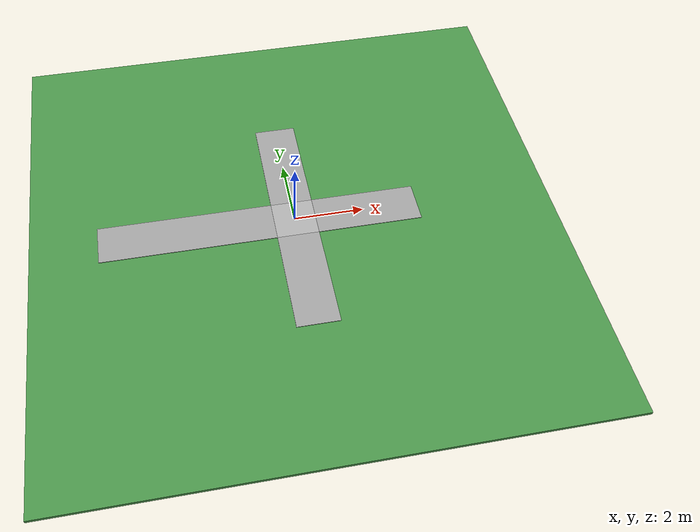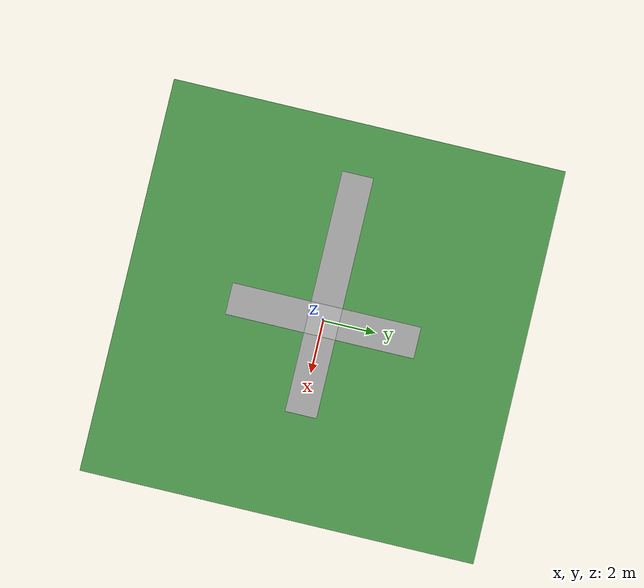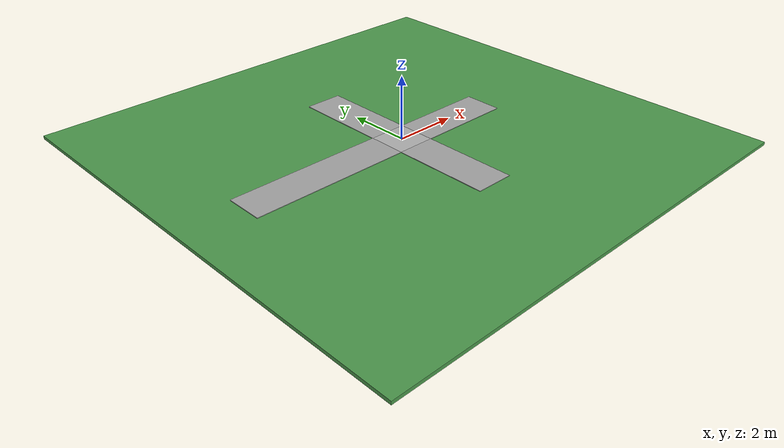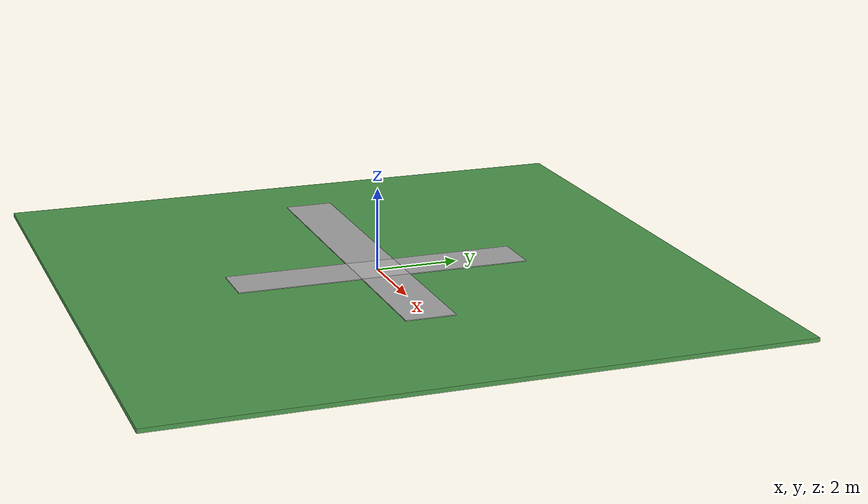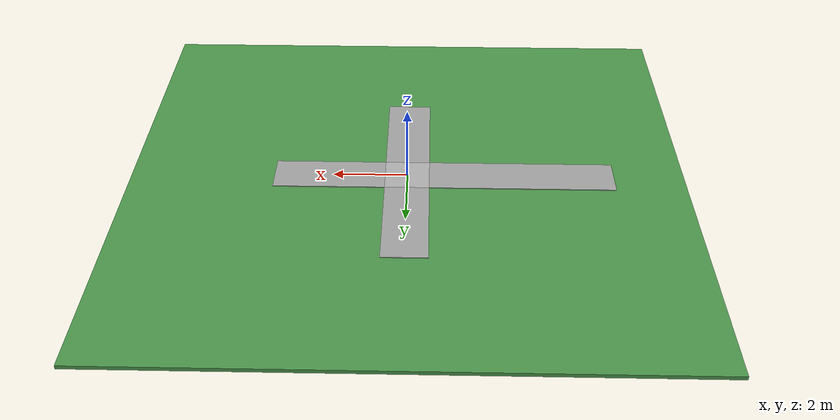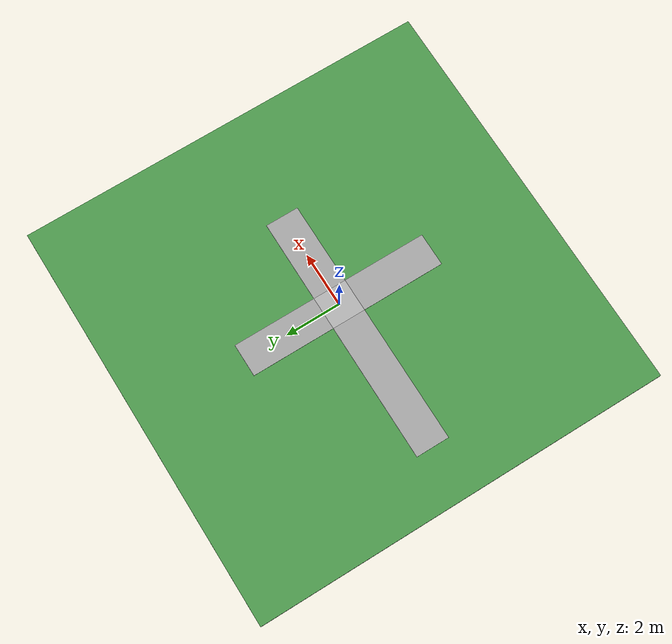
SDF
<?xml version="1.0" ?>
<sdf version="1.8">
  <world name="campus_sidewalk">

    <!-- 1. SIMULATION PHYSICS & SYSTEM PLUGINS     -->
    <physics name="1ms" type="ignored">
      <max_step_size>0.001</max_step_size>
      <real_time_factor>1.0</real_time_factor>
    </physics>

    <plugin filename="ignition-gazebo-physics-system" name="ignition::gazebo::systems::Physics"/>
    <plugin filename="ignition-gazebo-user-commands-system" name="ignition::gazebo::systems::UserCommands"/>
    <plugin filename="ignition-gazebo-scene-broadcaster-system" name="ignition::gazebo::systems::SceneBroadcaster"/>
    <plugin filename="ignition-gazebo-sensors-system" name="ignition::gazebo::systems::Sensors">
      <render_engine>ogre2</render_engine>
    </plugin>

    <!-- 2. LIGHTING & SUN                          -->
    <light type="directional" name="sun">
      <cast_shadows>true</cast_shadows>
      <pose>0 0 10 0 0 0</pose>
      <diffuse>0.8 0.8 0.8 1</diffuse>
      <specular>0.2 0.2 0.2 1</specular>
      <attenuation>
        <range>1000</range>
        <constant>0.9</constant>
        <linear>0.01</linear>
        <quadratic>0.001</quadratic>
      </attenuation>
      <direction>-0.5 0.1 -0.9</direction>
    </light>

    <!-- 3. THE GRASS BASE (Label 2)                -->
    <model name="grass_plane">
      <static>true</static>
      <link name="link">
        <pose>0 0 -0.05 0 0 0</pose> <!-- Top surface sits at Z = 0.0 -->
        <collision name="collision">
          <geometry><box><size>15 15 0.1</size></box></geometry>
        </collision>
        <visual name="visual">
          <geometry><box><size>15 15 0.1</size></box></geometry>
          <material>
            <ambient>0.3 0.6 0.3 1</ambient>
            <diffuse>0.3 0.6 0.3 1</diffuse>
          </material>
          <plugin filename="ignition-gazebo-label-system" name="ignition::gazebo::systems::Label">
            <label>2</label> <!-- 2 = Grass -->
          </plugin>
        </visual>
      </link>
    </model>

    <!-- 4. THE SIDEWALK NETWORK (Label 1)          -->
    <model name="sidewalk_network">
      <static>true</static>

      <!-- Center Intersection (1.2m x 1.2m square at Origin) -->
      <link name="intersection">
        <pose>0 0 -0.005 0 0 0</pose> <!-- Top surface sits at Z = 0.02 (2cm lip) -->
        <collision name="col"><geometry><box><size>1.2 1.2 0.05</size></box></geometry></collision>
        <visual name="vis">
          <geometry><box><size>1.2 1.2 0.05</size></box></geometry>
          <material><ambient>0.7 0.7 0.7 1</ambient><diffuse>0.7 0.7 0.7 1</diffuse></material>
          <plugin filename="ignition-gazebo-label-system" name="ignition::gazebo::systems::Label">
            <label>1</label> <!-- 1 = Sidewalk -->
          </plugin>
        </visual>
      </link>

      <!-- South Branch (The 5-meter straight stretch going from X = -0.6 to -5.6) -->
      <link name="south_straight">
        <pose>-3.1 0 -0.005 0 0 0</pose>
        <collision name="col"><geometry><box><size>5.0 1.2 0.05</size></box></geometry></collision>
        <visual name="vis">
          <geometry><box><size>5.0 1.2 0.05</size></box></geometry>
          <material><ambient>0.65 0.65 0.65 1</ambient><diffuse>0.65 0.65 0.65 1</diffuse></material>
          <plugin filename="ignition-gazebo-label-system" name="ignition::gazebo::systems::Label">
            <label>1</label> <!-- 1 = Sidewalk -->
          </plugin>
        </visual>
      </link>

      <!-- North Branch (3-meter branch going from X = 0.6 to 3.6) -->
      <link name="north_branch">
        <pose>2.1 0 -0.005 0 0 0</pose>
        <collision name="col"><geometry><box><size>3.0 1.2 0.05</size></box></geometry></collision>
        <visual name="vis">
          <geometry><box><size>3.0 1.2 0.05</size></box></geometry>
          <material><ambient>0.65 0.65 0.65 1</ambient><diffuse>0.65 0.65 0.65 1</diffuse></material>
          <plugin filename="ignition-gazebo-label-system" name="ignition::gazebo::systems::Label">
            <label>1</label> <!-- 1 = Sidewalk -->
          </plugin>
        </visual>
      </link>

      <!-- East Branch (3-meter branch going from Y = 0.6 to 3.6) -->
      <link name="east_branch">
        <pose>0 2.1 -0.005 0 0 0</pose>
        <collision name="col"><geometry><box><size>1.2 3.0 0.05</size></box></geometry></collision>
        <visual name="vis">
          <geometry><box><size>1.2 3.0 0.05</size></box></geometry>
          <material><ambient>0.65 0.65 0.65 1</ambient><diffuse>0.65 0.65 0.65 1</diffuse></material>
          <plugin filename="ignition-gazebo-label-system" name="ignition::gazebo::systems::Label">
            <label>1</label> <!-- 1 = Sidewalk -->
          </plugin>
        </visual>
      </link>

      <!-- West Branch (3-meter branch going from Y = -0.6 to -3.6) -->
      <link name="west_branch">
        <pose>0 -2.1 -0.005 0 0 0</pose>
        <collision name="col"><geometry><box><size>1.2 3.0 0.05</size></box></geometry></collision>
        <visual name="vis">
          <geometry><box><size>1.2 3.0 0.05</size></box></geometry>
          <material><ambient>0.65 0.65 0.65 1</ambient><diffuse>0.65 0.65 0.65 1</diffuse></material>
          <plugin filename="ignition-gazebo-label-system" name="ignition::gazebo::systems::Label">
            <label>1</label> <!-- 1 = Sidewalk -->
          </plugin>
        </visual>
      </link>

    </model>
  </world>
</sdf>
